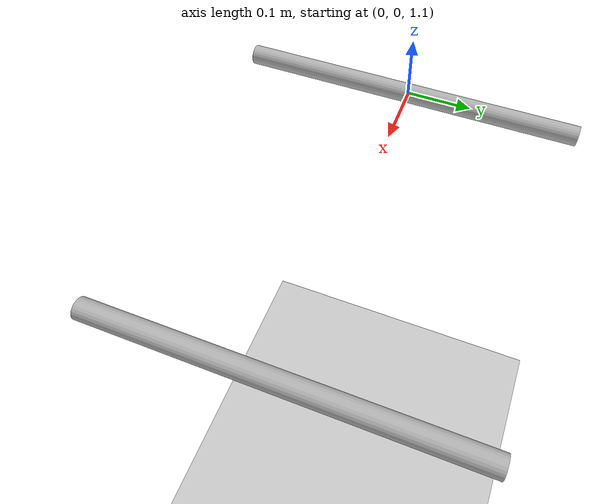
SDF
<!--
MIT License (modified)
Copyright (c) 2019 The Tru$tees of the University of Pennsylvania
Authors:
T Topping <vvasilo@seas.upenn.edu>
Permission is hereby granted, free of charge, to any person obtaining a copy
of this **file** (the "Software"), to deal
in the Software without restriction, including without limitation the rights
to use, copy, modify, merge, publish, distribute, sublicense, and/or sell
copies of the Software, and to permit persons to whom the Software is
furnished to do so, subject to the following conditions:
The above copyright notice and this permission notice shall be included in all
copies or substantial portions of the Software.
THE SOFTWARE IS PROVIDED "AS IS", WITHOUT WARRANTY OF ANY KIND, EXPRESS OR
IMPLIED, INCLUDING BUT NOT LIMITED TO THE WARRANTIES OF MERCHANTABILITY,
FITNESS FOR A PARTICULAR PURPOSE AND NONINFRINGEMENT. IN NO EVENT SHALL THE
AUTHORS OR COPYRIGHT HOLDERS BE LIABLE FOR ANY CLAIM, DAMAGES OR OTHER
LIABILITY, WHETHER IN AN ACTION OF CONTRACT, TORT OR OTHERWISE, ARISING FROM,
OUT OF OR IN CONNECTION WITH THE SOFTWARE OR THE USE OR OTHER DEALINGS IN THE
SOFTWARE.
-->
<?xml version="1.0" ?>

<sdf version="1.4">
  <world name="default">
    <!-- Target real time factor is the product of max_step_size and real_time_update_rate -->
    <!-- Negative real_time_update_rate means that Gazebo will run as fast as possible -->
    <!-- A max_step_size of 0.0003 seems to work for Minitaur and 0.00005 for Vision -->
    <physics type="ode">
      <max_step_size>0.0001</max_step_size>
      <real_time_update_rate>10000</real_time_update_rate>
    </physics>
    <include>
      <uri>model://ground_plane</uri>
    </include>
    <include>
      <uri>model://sun</uri>
    </include>
    <include>
      <uri>model://bars</uri>
      <name>bars</name>
      <pose>0.0 0 1.1 0 0 0</pose>
    </include>
  </world>
</sdf>

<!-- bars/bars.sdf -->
<sdf version='1.6'>
  <model name='bars'>
    <link name='bar1'>
      <pose frame=''>0 0 0 0 -0 0</pose>
      <inertial>
        <mass>1</mass>
        <inertia>
          <ixx>4.78</ixx>
          <ixy>0</ixy>
          <ixz>0</ixz>
          <iyy>6.26</iyy>
          <iyz>0</iyz>
          <izz>8.235</izz>
        </inertia>
        <pose frame=''>0 0 0.0 1.571 -0 0</pose>
      </inertial>
      <gravity>1</gravity>
      <self_collide>0</self_collide>
      <kinematic>0</kinematic>

      <visual name='bar1_visual'>
        <pose frame=''>0 0 0.0 1.571 -0 0</pose>
        <geometry>
          <cylinder>
            <radius>0.015</radius>
            <length>0.53</length>
          </cylinder>
        </geometry>
        <material>
          <script>
            <uri>model://bars/materials/scripts</uri>
            <uri>model://bars/materials/textures</uri>
            <name>bars</name>
          </script>
        </material>
        <cast_shadows>1</cast_shadows>
        <transparency>0</transparency>
      </visual>
      <collision name='bar1_collision'>
        <laser_retro>0</laser_retro>
        <max_contacts>10</max_contacts>
        <pose frame=''>0 0 0 1.571 -0 0</pose>
        <geometry>
          <cylinder>
            <radius>0.015</radius>
            <length>0.53</length>
          </cylinder>
        </geometry>
        <surface>
          <friction>
            <ode>
              <mu>30</mu>
              <mu2>30</mu2>
              <fdir1>0 0 0</fdir1>
              <slip1>0</slip1>
              <slip2>0</slip2>
            </ode>
            <torsional>
              <coefficient>1</coefficient>
              <patch_radius>0</patch_radius>
              <surface_radius>0</surface_radius>
              <use_patch_radius>1</use_patch_radius>
              <ode>
                <slip>0</slip>
              </ode>
            </torsional>
          </friction>
          <bounce/>
          <contact/>
        </surface>
      </collision>
    </link>
    <link name='bar2'>
      <pose frame=''>0.5 0 0 0 -0 0</pose>
      <inertial>
        <mass>1</mass>
        <inertia>
          <ixx>4.78</ixx>
          <ixy>0</ixy>
          <ixz>0</ixz>
          <iyy>6.26</iyy>
          <iyz>0</iyz>
          <izz>8.235</izz>
        </inertia>
        <pose frame=''>0.0 0 0.0 1.571 -0 0</pose>
      </inertial>
      <gravity>1</gravity>
      <self_collide>0</self_collide>
      <kinematic>0</kinematic>

      <visual name='bar2_visual'>
        <pose frame=''>0.0 0 0.0 1.571 -0 0</pose>
        <geometry>
          <cylinder>
            <radius>0.015</radius>
            <length>0.53</length>
          </cylinder>
        </geometry>
        <material>
          <script>
            <uri>model://bars/materials/scripts</uri>
            <uri>model://bars/materials/textures</uri>
            <name>bars</name>
          </script>
        </material>
        <cast_shadows>1</cast_shadows>
        <transparency>0</transparency>
      </visual>
      <collision name='bar2_collision'>
        <laser_retro>0</laser_retro>
        <max_contacts>10</max_contacts>
        <pose frame=''>0.0 0 0 1.571 -0 0</pose>
        <geometry>
          <cylinder>
            <radius>0.015</radius>
            <length>0.53</length>
          </cylinder>
        </geometry>
        <surface>
          <friction>
            <ode>
              <mu>30</mu>
              <mu2>30</mu2>
              <fdir1>0 0 0</fdir1>
              <slip1>0</slip1>
              <slip2>0</slip2>
            </ode>
            <torsional>
              <coefficient>1</coefficient>
              <patch_radius>0</patch_radius>
              <surface_radius>0</surface_radius>
              <use_patch_radius>1</use_patch_radius>
              <ode>
                <slip>0</slip>
              </ode>
            </torsional>
          </friction>
          <bounce/>
          <contact/>
        </surface>
      </collision>
    </link>
    <static>0</static>
    <allow_auto_disable>1</allow_auto_disable>
  </model>
</sdf>
